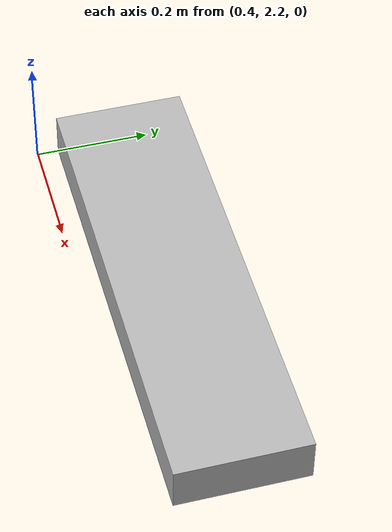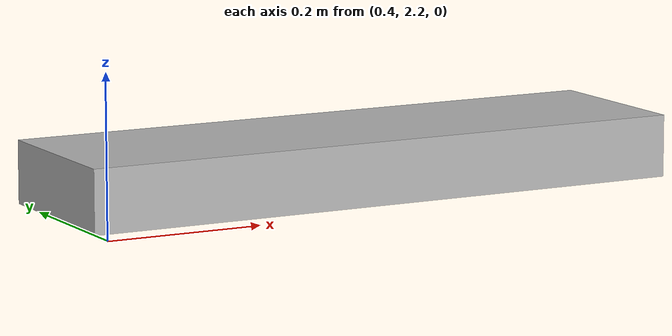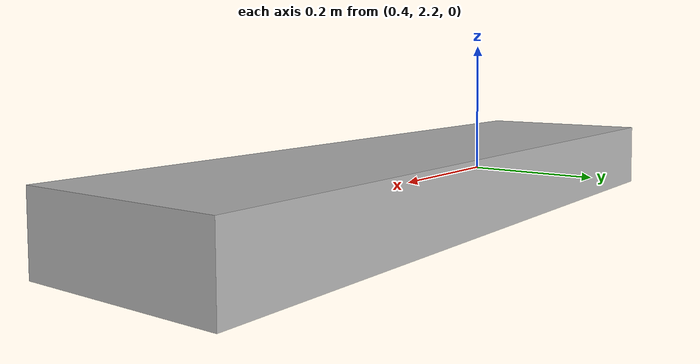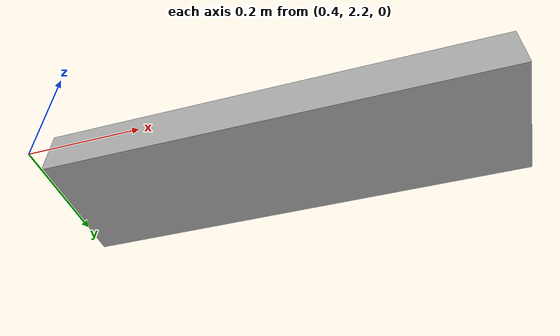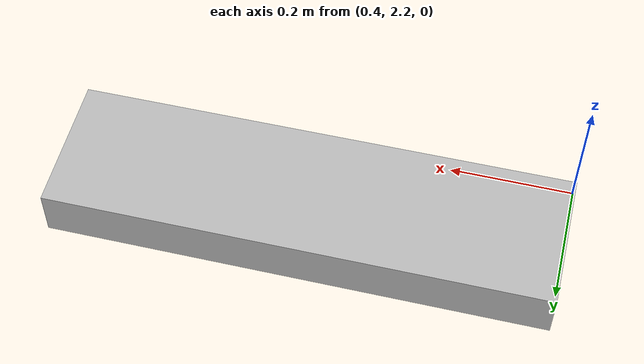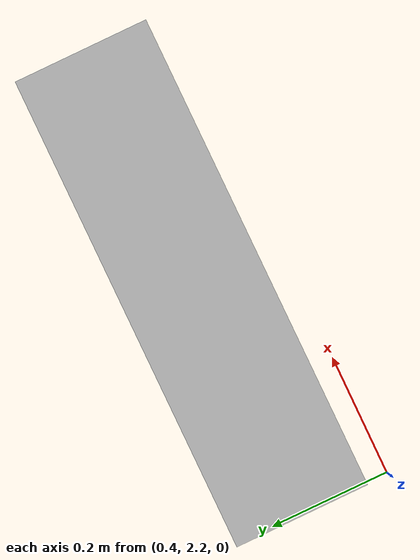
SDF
<?xml version="1.0"?>
<sdf version="1.4">
  <model name="step_on_platform">
    <pose>0.8 2.35 0.08 0 0 0</pose>
    <static>true</static>

    <link name="step">
      <visual name="step_visual">
        <pose>0 0 0 1.57079632679 0 1.57079632679</pose>
        <geometry>
          <mesh>
            <uri>model://gazebo_worlds/meshes/step.dae</uri>
          </mesh>
        </geometry>
      </visual>
      <collision name="step_collision">
        <pose>0 0 -0.04 0 0 0</pose>
        <geometry>
          <box>
            <size>0.8 0.225 0.08</size>
          </box>
        </geometry>
      </collision>
    </link>

  </model>
</sdf>
